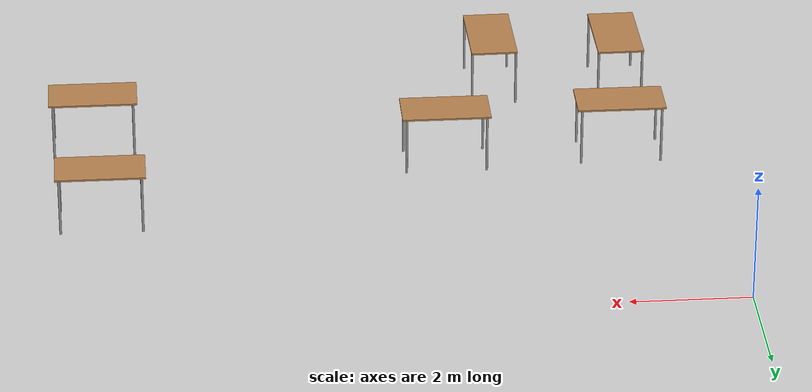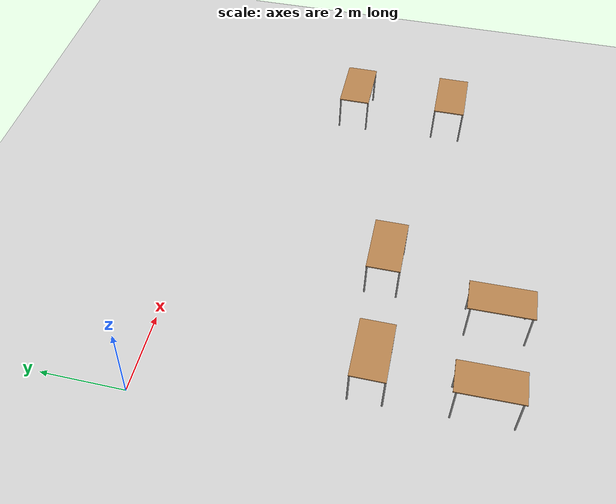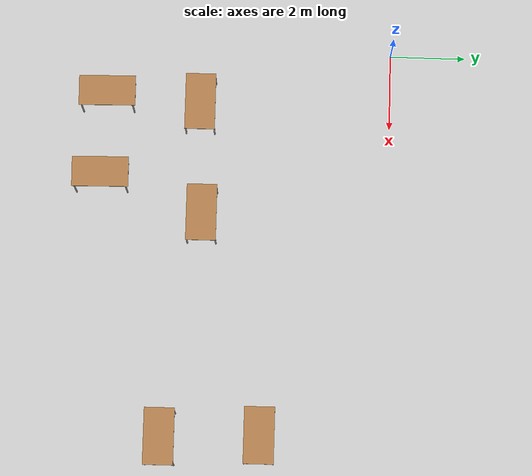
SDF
<sdf version="1.6">
 <world name="default">
  <model name="ground_plane">
   <static>1</static>
   <link name="link">
    <collision name="collision">
     <geometry><plane><normal>0 0 1</normal><size>100 100</size></plane></geometry>
     <surface><friction><ode><mu>100</mu><mu2>50</mu2></ode></friction></surface>
    </collision>
    <visual name="visual">
     <cast_shadows>0</cast_shadows>
     <geometry><plane><normal>0 0 1</normal><size>100 100</size></plane></geometry>
     <material>
      <script><uri>file://media/materials/scripts/gazebo.material</uri><name>Gazebo/Grey</name></script>
     </material>
    </visual>
   </link>
  </model>
  <model name="table_clone_1">
   <static>1</static>
   <link name="link">
    <collision name="surface">
     <pose>0 0 1 0 -0 0</pose>
     <geometry><box><size>1.5 0.8 0.03</size></box></geometry>
     <surface><friction><ode><mu>0.6</mu><mu2>0.6</mu2></ode></friction></surface>
    </collision>
    <visual name="visual1">
     <pose>0 0 1 0 -0 0</pose>
     <geometry><box><size>1.5 0.8 0.03</size></box></geometry>
     <material>
      <script><uri>file://media/materials/scripts/gazebo.material</uri><name>Gazebo/Wood</name></script>
     </material>
    </visual>
    <collision name="front_left_leg">
     <pose>0.68 0.38 0.5 0 -0 0</pose>
     <geometry><cylinder><radius>0.02</radius><length>1</length></cylinder></geometry>
    </collision>
    <visual name="front_left_leg">
     <pose>0.68 0.38 0.5 0 -0 0</pose>
     <geometry><cylinder><radius>0.02</radius><length>1</length></cylinder></geometry>
     <material>
      <script><uri>file://media/materials/scripts/gazebo.material</uri><name>Gazebo/Grey</name></script>
     </material>
    </visual>
    <collision name="front_right_leg">
     <pose>0.68 -0.38 0.5 0 -0 0</pose>
     <geometry><cylinder><radius>0.02</radius><length>1</length></cylinder></geometry>
    </collision>
    <visual name="front_right_leg">
     <pose>0.68 -0.38 0.5 0 -0 0</pose>
     <geometry><cylinder><radius>0.02</radius><length>1</length></cylinder></geometry>
     <material>
      <script><uri>file://media/materials/scripts/gazebo.material</uri><name>Gazebo/Grey</name></script>
     </material>
    </visual>
    <collision name="back_right_leg">
     <pose>-0.68 -0.38 0.5 0 -0 0</pose>
     <geometry><cylinder><radius>0.02</radius><length>1</length></cylinder></geometry>
    </collision>
    <visual name="back_right_leg">
     <pose>-0.68 -0.38 0.5 0 -0 0</pose>
     <geometry><cylinder><radius>0.02</radius><length>1</length></cylinder></geometry>
     <material>
      <script><uri>file://media/materials/scripts/gazebo.material</uri><name>Gazebo/Grey</name></script>
     </material>
    </visual>
    <collision name="back_left_leg">
     <pose>-0.68 0.38 0.5 0 -0 0</pose>
     <geometry><cylinder><radius>0.02</radius><length>1</length></cylinder></geometry>
    </collision>
    <visual name="back_left_leg">
     <pose>-0.68 0.38 0.5 0 -0 0</pose>
     <geometry><cylinder><radius>0.02</radius><length>1</length></cylinder></geometry>
     <material>
      <script><uri>file://media/materials/scripts/gazebo.material</uri><name>Gazebo/Grey</name></script>
     </material>
    </visual>
   </link>
   <pose>10.3945 -3.26462 0 0 -0 0</pose>
  </model>
  <model name="table_clone_2">
   <static>1</static>
   <link name="link">
    <collision name="surface">
     <pose>0 0 1 0 -0 0</pose>
     <geometry><box><size>1.5 0.8 0.03</size></box></geometry>
     <surface><friction><ode><mu>0.6</mu><mu2>0.6</mu2></ode></friction></surface>
    </collision>
    <visual name="visual1">
     <pose>0 0 1 0 -0 0</pose>
     <geometry><box><size>1.5 0.8 0.03</size></box></geometry>
     <material>
      <script><uri>file://media/materials/scripts/gazebo.material</uri><name>Gazebo/Wood</name></script>
     </material>
    </visual>
    <collision name="front_left_leg">
     <pose>0.68 0.38 0.5 0 -0 0</pose>
     <geometry><cylinder><radius>0.02</radius><length>1</length></cylinder></geometry>
    </collision>
    <visual name="front_left_leg">
     <pose>0.68 0.38 0.5 0 -0 0</pose>
     <geometry><cylinder><radius>0.02</radius><length>1</length></cylinder></geometry>
     <material>
      <script><uri>file://media/materials/scripts/gazebo.material</uri><name>Gazebo/Grey</name></script>
     </material>
    </visual>
    <collision name="front_right_leg">
     <pose>0.68 -0.38 0.5 0 -0 0</pose>
     <geometry><cylinder><radius>0.02</radius><length>1</length></cylinder></geometry>
    </collision>
    <visual name="front_right_leg">
     <pose>0.68 -0.38 0.5 0 -0 0</pose>
     <geometry><cylinder><radius>0.02</radius><length>1</length></cylinder></geometry>
     <material>
      <script><uri>file://media/materials/scripts/gazebo.material</uri><name>Gazebo/Grey</name></script>
     </material>
    </visual>
    <collision name="back_right_leg">
     <pose>-0.68 -0.38 0.5 0 -0 0</pose>
     <geometry><cylinder><radius>0.02</radius><length>1</length></cylinder></geometry>
    </collision>
    <visual name="back_right_leg">
     <pose>-0.68 -0.38 0.5 0 -0 0</pose>
     <geometry><cylinder><radius>0.02</radius><length>1</length></cylinder></geometry>
     <material>
      <script><uri>file://media/materials/scripts/gazebo.material</uri><name>Gazebo/Grey</name></script>
     </material>
    </visual>
    <collision name="back_left_leg">
     <pose>-0.68 0.38 0.5 0 -0 0</pose>
     <geometry><cylinder><radius>0.02</radius><length>1</length></cylinder></geometry>
    </collision>
    <visual name="back_left_leg">
     <pose>-0.68 0.38 0.5 0 -0 0</pose>
     <geometry><cylinder><radius>0.02</radius><length>1</length></cylinder></geometry>
     <material>
      <script><uri>file://media/materials/scripts/gazebo.material</uri><name>Gazebo/Grey</name></script>
     </material>
    </visual>
   </link>
   <pose>10.4853 -5.8758 0 0 -0 0</pose>
  </model>
  <model name="table_clone_3">
   <static>1</static>
   <link name="link">
    <collision name="surface">
     <pose>0 0 1 0 -0 0</pose>
     <geometry><box><size>1.5 0.8 0.03</size></box></geometry>
     <surface><friction><ode><mu>0.6</mu><mu2>0.6</mu2></ode></friction></surface>
    </collision>
    <visual name="visual1">
     <pose>0 0 1 0 -0 0</pose>
     <geometry><box><size>1.5 0.8 0.03</size></box></geometry>
     <material>
      <script><uri>file://media/materials/scripts/gazebo.material</uri><name>Gazebo/Wood</name></script>
     </material>
    </visual>
    <collision name="front_left_leg">
     <pose>0.68 0.38 0.5 0 -0 0</pose>
     <geometry><cylinder><radius>0.02</radius><length>1</length></cylinder></geometry>
    </collision>
    <visual name="front_left_leg">
     <pose>0.68 0.38 0.5 0 -0 0</pose>
     <geometry><cylinder><radius>0.02</radius><length>1</length></cylinder></geometry>
     <material>
      <script><uri>file://media/materials/scripts/gazebo.material</uri><name>Gazebo/Grey</name></script>
     </material>
    </visual>
    <collision name="front_right_leg">
     <pose>0.68 -0.38 0.5 0 -0 0</pose>
     <geometry><cylinder><radius>0.02</radius><length>1</length></cylinder></geometry>
    </collision>
    <visual name="front_right_leg">
     <pose>0.68 -0.38 0.5 0 -0 0</pose>
     <geometry><cylinder><radius>0.02</radius><length>1</length></cylinder></geometry>
     <material>
      <script><uri>file://media/materials/scripts/gazebo.material</uri><name>Gazebo/Grey</name></script>
     </material>
    </visual>
    <collision name="back_right_leg">
     <pose>-0.68 -0.38 0.5 0 -0 0</pose>
     <geometry><cylinder><radius>0.02</radius><length>1</length></cylinder></geometry>
    </collision>
    <visual name="back_right_leg">
     <pose>-0.68 -0.38 0.5 0 -0 0</pose>
     <geometry><cylinder><radius>0.02</radius><length>1</length></cylinder></geometry>
     <material>
      <script><uri>file://media/materials/scripts/gazebo.material</uri><name>Gazebo/Grey</name></script>
     </material>
    </visual>
    <collision name="back_left_leg">
     <pose>-0.68 0.38 0.5 0 -0 0</pose>
     <geometry><cylinder><radius>0.02</radius><length>1</length></cylinder></geometry>
    </collision>
    <visual name="back_left_leg">
     <pose>-0.68 0.38 0.5 0 -0 0</pose>
     <geometry><cylinder><radius>0.02</radius><length>1</length></cylinder></geometry>
     <material>
      <script><uri>file://media/materials/scripts/gazebo.material</uri><name>Gazebo/Grey</name></script>
     </material>
    </visual>
   </link>
   <pose>4.54636 -4.94862 0 0 -0 0</pose>
  </model>
  <model name="table_clone_4">
   <static>1</static>
   <link name="link">
    <collision name="surface">
     <pose>0 0 1 0 -0 0</pose>
     <geometry><box><size>1.5 0.8 0.03</size></box></geometry>
     <surface><friction><ode><mu>0.6</mu><mu2>0.6</mu2></ode></friction></surface>
    </collision>
    <visual name="visual1">
     <pose>0 0 1 0 -0 0</pose>
     <geometry><box><size>1.5 0.8 0.03</size></box></geometry>
     <material>
      <script><uri>file://media/materials/scripts/gazebo.material</uri><name>Gazebo/Wood</name></script>
     </material>
    </visual>
    <collision name="front_left_leg">
     <pose>0.68 0.38 0.5 0 -0 0</pose>
     <geometry><cylinder><radius>0.02</radius><length>1</length></cylinder></geometry>
    </collision>
    <visual name="front_left_leg">
     <pose>0.68 0.38 0.5 0 -0 0</pose>
     <geometry><cylinder><radius>0.02</radius><length>1</length></cylinder></geometry>
     <material>
      <script><uri>file://media/materials/scripts/gazebo.material</uri><name>Gazebo/Grey</name></script>
     </material>
    </visual>
    <collision name="front_right_leg">
     <pose>0.68 -0.38 0.5 0 -0 0</pose>
     <geometry><cylinder><radius>0.02</radius><length>1</length></cylinder></geometry>
    </collision>
    <visual name="front_right_leg">
     <pose>0.68 -0.38 0.5 0 -0 0</pose>
     <geometry><cylinder><radius>0.02</radius><length>1</length></cylinder></geometry>
     <material>
      <script><uri>file://media/materials/scripts/gazebo.material</uri><name>Gazebo/Grey</name></script>
     </material>
    </visual>
    <collision name="back_right_leg">
     <pose>-0.68 -0.38 0.5 0 -0 0</pose>
     <geometry><cylinder><radius>0.02</radius><length>1</length></cylinder></geometry>
    </collision>
    <visual name="back_right_leg">
     <pose>-0.68 -0.38 0.5 0 -0 0</pose>
     <geometry><cylinder><radius>0.02</radius><length>1</length></cylinder></geometry>
     <material>
      <script><uri>file://media/materials/scripts/gazebo.material</uri><name>Gazebo/Grey</name></script>
     </material>
    </visual>
    <collision name="back_left_leg">
     <pose>-0.68 0.38 0.5 0 -0 0</pose>
     <geometry><cylinder><radius>0.02</radius><length>1</length></cylinder></geometry>
    </collision>
    <visual name="back_left_leg">
     <pose>-0.68 0.38 0.5 0 -0 0</pose>
     <geometry><cylinder><radius>0.02</radius><length>1</length></cylinder></geometry>
     <material>
      <script><uri>file://media/materials/scripts/gazebo.material</uri><name>Gazebo/Grey</name></script>
     </material>
    </visual>
   </link>
   <pose>1.56342 -5.06681 0 0 -0 0</pose>
  </model>
  <model name="table_clone_12_clone_1">
   <static>1</static>
   <link name="link">
    <collision name="surface">
     <pose>0 0 1 0 -0 0</pose>
     <geometry><box><size>1.5 0.8 0.03</size></box></geometry>
     <surface><friction><ode><mu>0.6</mu><mu2>0.6</mu2></ode></friction></surface>
    </collision>
    <visual name="visual1">
     <pose>0 0 1 0 -0 0</pose>
     <geometry><box><size>1.5 0.8 0.03</size></box></geometry>
     <material>
      <script><uri>file://media/materials/scripts/gazebo.material</uri><name>Gazebo/Wood</name></script>
     </material>
    </visual>
    <collision name="front_left_leg">
     <pose>0.68 0.38 0.5 0 -0 0</pose>
     <geometry><cylinder><radius>0.02</radius><length>1</length></cylinder></geometry>
    </collision>
    <visual name="front_left_leg">
     <pose>0.68 0.38 0.5 0 -0 0</pose>
     <geometry><cylinder><radius>0.02</radius><length>1</length></cylinder></geometry>
     <material>
      <script><uri>file://media/materials/scripts/gazebo.material</uri><name>Gazebo/Grey</name></script>
     </material>
    </visual>
    <collision name="front_right_leg">
     <pose>0.68 -0.38 0.5 0 -0 0</pose>
     <geometry><cylinder><radius>0.02</radius><length>1</length></cylinder></geometry>
    </collision>
    <visual name="front_right_leg">
     <pose>0.68 -0.38 0.5 0 -0 0</pose>
     <geometry><cylinder><radius>0.02</radius><length>1</length></cylinder></geometry>
     <material>
      <script><uri>file://media/materials/scripts/gazebo.material</uri><name>Gazebo/Grey</name></script>
     </material>
    </visual>
    <collision name="back_right_leg">
     <pose>-0.68 -0.38 0.5 0 -0 0</pose>
     <geometry><cylinder><radius>0.02</radius><length>1</length></cylinder></geometry>
    </collision>
    <visual name="back_right_leg">
     <pose>-0.68 -0.38 0.5 0 -0 0</pose>
     <geometry><cylinder><radius>0.02</radius><length>1</length></cylinder></geometry>
     <material>
      <script><uri>file://media/materials/scripts/gazebo.material</uri><name>Gazebo/Grey</name></script>
     </material>
    </visual>
    <collision name="back_left_leg">
     <pose>-0.68 0.38 0.5 0 -0 0</pose>
     <geometry><cylinder><radius>0.02</radius><length>1</length></cylinder></geometry>
    </collision>
    <visual name="back_left_leg">
     <pose>-0.68 0.38 0.5 0 -0 0</pose>
     <geometry><cylinder><radius>0.02</radius><length>1</length></cylinder></geometry>
     <material>
      <script><uri>file://media/materials/scripts/gazebo.material</uri><name>Gazebo/Grey</name></script>
     </material>
    </visual>
   </link>
   <pose>1.33292 -7.54827 0 0 0 -1.55769</pose>
  </model>
  <model name="table_clone_12_clone_2">
   <static>1</static>
   <link name="link">
    <collision name="surface">
     <pose>0 0 1 0 -0 0</pose>
     <geometry><box><size>1.5 0.8 0.03</size></box></geometry>
     <surface><friction><ode><mu>0.6</mu><mu2>0.6</mu2></ode></friction></surface>
    </collision>
    <visual name="visual1">
     <pose>0 0 1 0 -0 0</pose>
     <geometry><box><size>1.5 0.8 0.03</size></box></geometry>
     <material>
      <script><uri>file://media/materials/scripts/gazebo.material</uri><name>Gazebo/Wood</name></script>
     </material>
    </visual>
    <collision name="front_left_leg">
     <pose>0.68 0.38 0.5 0 -0 0</pose>
     <geometry><cylinder><radius>0.02</radius><length>1</length></cylinder></geometry>
    </collision>
    <visual name="front_left_leg">
     <pose>0.68 0.38 0.5 0 -0 0</pose>
     <geometry><cylinder><radius>0.02</radius><length>1</length></cylinder></geometry>
     <material>
      <script><uri>file://media/materials/scripts/gazebo.material</uri><name>Gazebo/Grey</name></script>
     </material>
    </visual>
    <collision name="front_right_leg">
     <pose>0.68 -0.38 0.5 0 -0 0</pose>
     <geometry><cylinder><radius>0.02</radius><length>1</length></cylinder></geometry>
    </collision>
    <visual name="front_right_leg">
     <pose>0.68 -0.38 0.5 0 -0 0</pose>
     <geometry><cylinder><radius>0.02</radius><length>1</length></cylinder></geometry>
     <material>
      <script><uri>file://media/materials/scripts/gazebo.material</uri><name>Gazebo/Grey</name></script>
     </material>
    </visual>
    <collision name="back_right_leg">
     <pose>-0.68 -0.38 0.5 0 -0 0</pose>
     <geometry><cylinder><radius>0.02</radius><length>1</length></cylinder></geometry>
    </collision>
    <visual name="back_right_leg">
     <pose>-0.68 -0.38 0.5 0 -0 0</pose>
     <geometry><cylinder><radius>0.02</radius><length>1</length></cylinder></geometry>
     <material>
      <script><uri>file://media/materials/scripts/gazebo.material</uri><name>Gazebo/Grey</name></script>
     </material>
    </visual>
    <collision name="back_left_leg">
     <pose>-0.68 0.38 0.5 0 -0 0</pose>
     <geometry><cylinder><radius>0.02</radius><length>1</length></cylinder></geometry>
    </collision>
    <visual name="back_left_leg">
     <pose>-0.68 0.38 0.5 0 -0 0</pose>
     <geometry><cylinder><radius>0.02</radius><length>1</length></cylinder></geometry>
     <material>
      <script><uri>file://media/materials/scripts/gazebo.material</uri><name>Gazebo/Grey</name></script>
     </material>
    </visual>
   </link>
   <pose>3.52779 -7.65768 0 0 0 -1.55769</pose>
  </model>
 </world>
</sdf>
